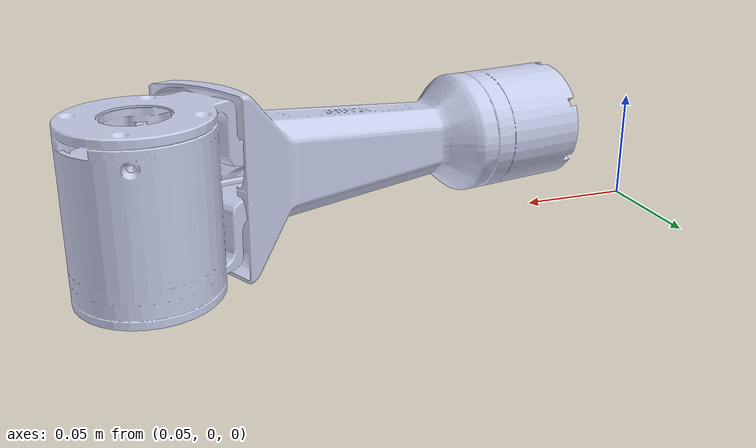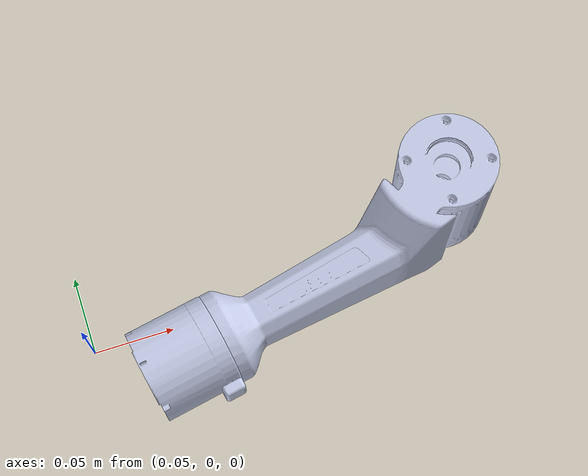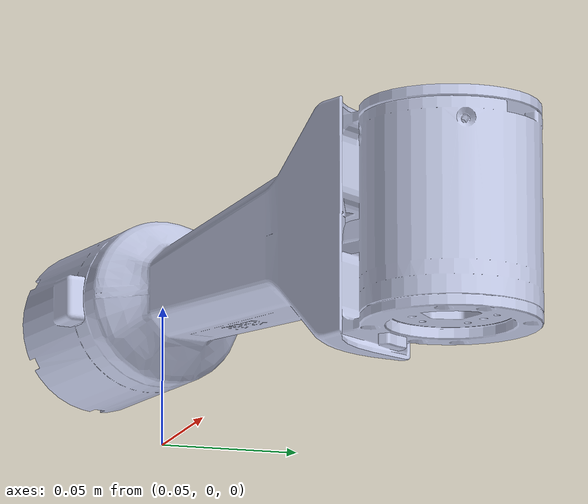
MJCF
<mujoco model="piper">
    <compiler angle="radian" />
    <size njmax="500" nconmax="100" />
    <asset>
        <mesh name="link6" file="/home/khalillee/sim1_ws/src/piper_ros/src/piper_description/meshes/link3.STL" />
    </asset>
    <worldbody>
        <body name="link3" pos="0.28358 0.028726 0" quat="0.998726 0 0 0.0504536" gravcomp="1">
            <inertial pos="-0.01999 -0.14808 -0.00053" mass="0.500"
          fullinertia="0.01347608 0.00046377 0.01363321 0.00161034 0.00000066 0.00000162"/>
            <geom type="mesh" rgba="0.792157 0.819608 0.933333 1" mesh="link6"/>
        </body>
    </worldbody>
</mujoco>
